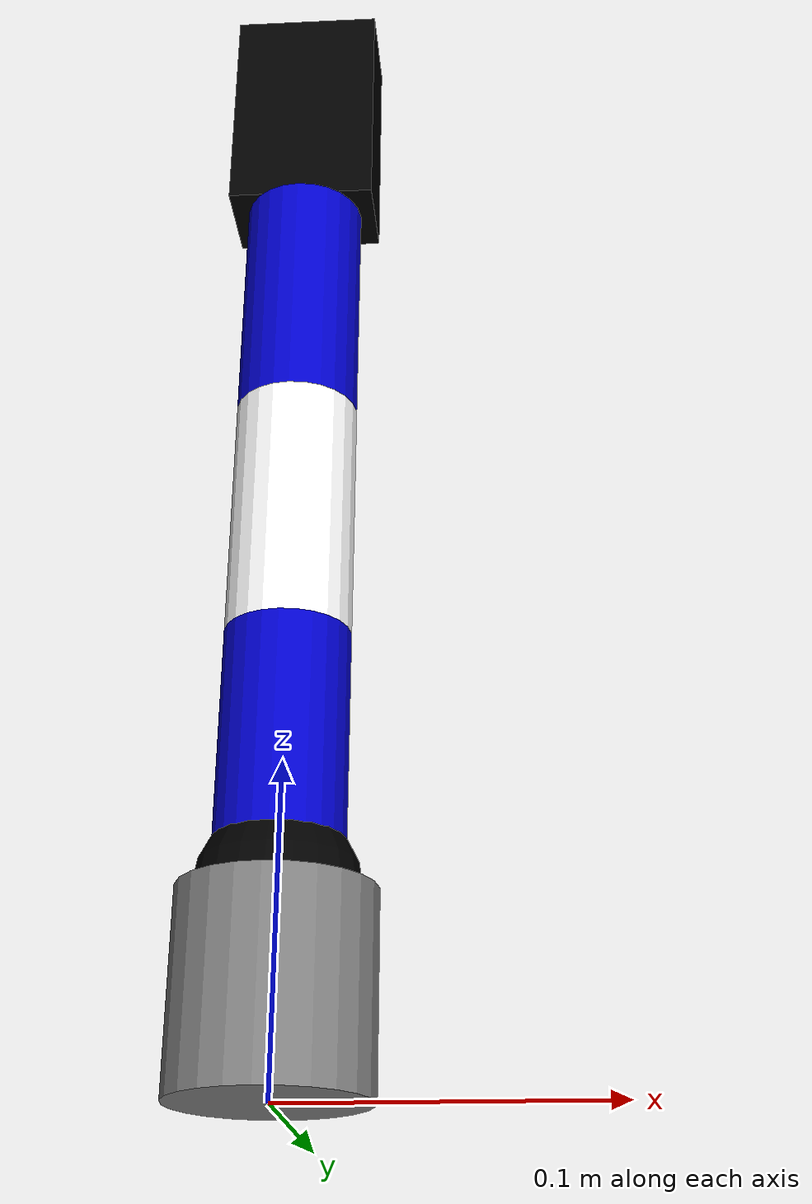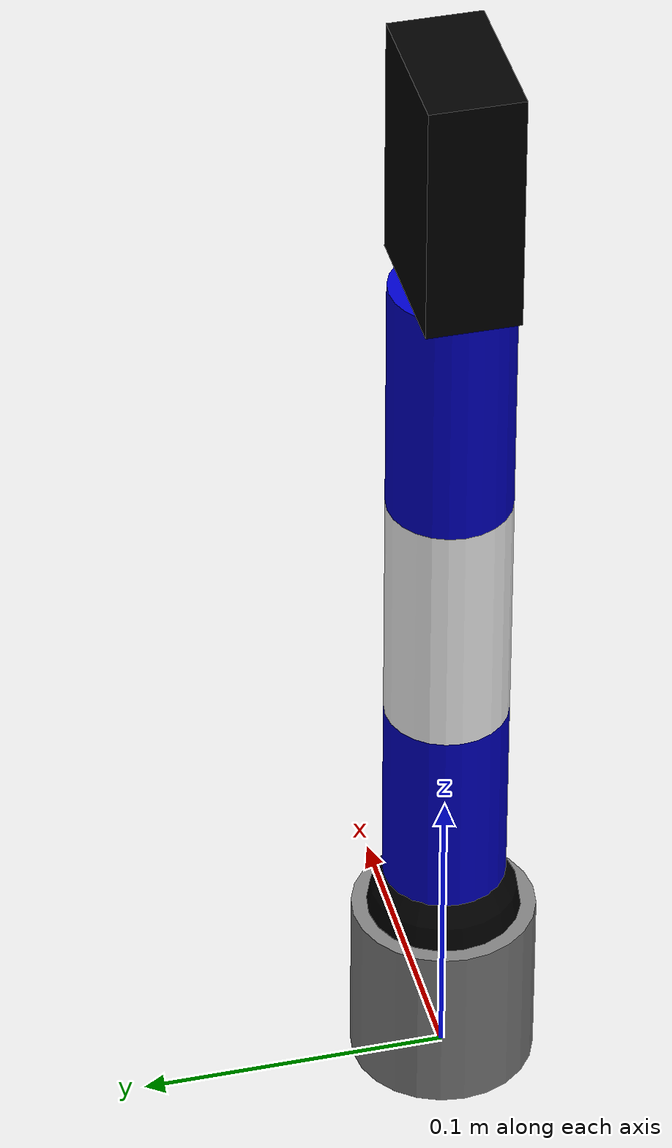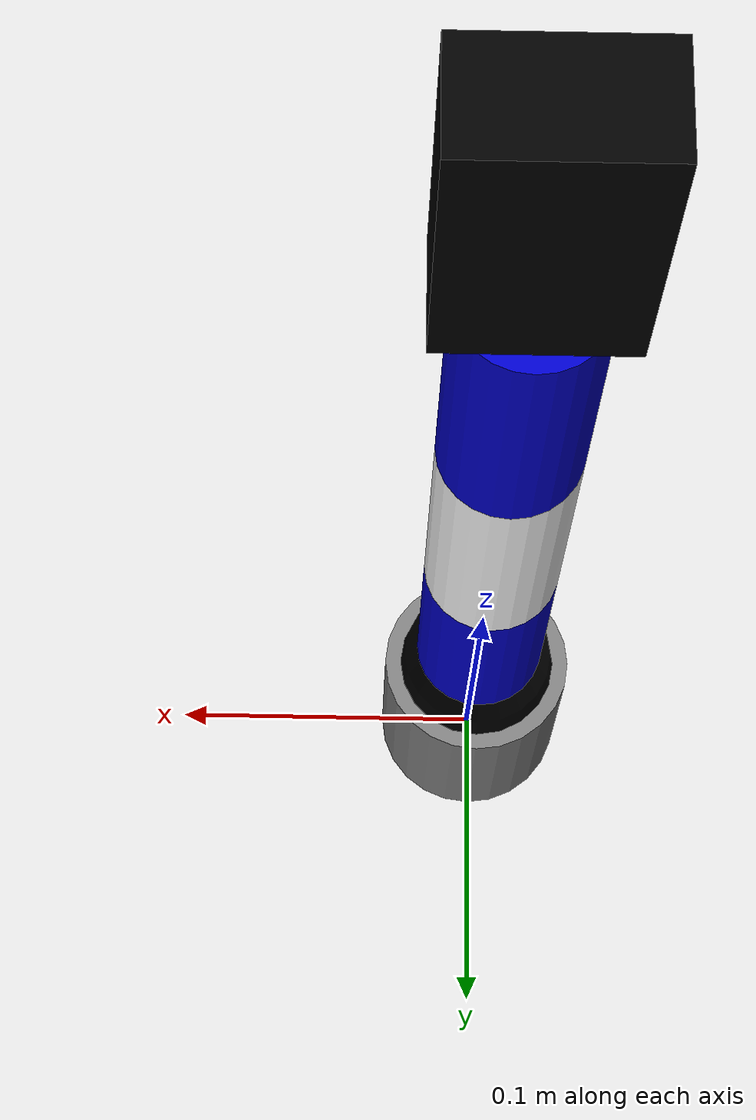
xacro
<?xml version="1.0"?>
<robot xmlns:xacro="http://www.ros.org/wiki/xacro" name="fashion_arm">

    <xacro:property name="L_LINK" value="0.0814"/>    <xacro:property name="L_END" value="0.140"/>      <xacro:property name="H_BASE" value="0.06"/>      <xacro:property name="RADIUS" value="0.02"/>

    <material name="blue"><color rgba="0 0 0.8 1"/></material>
    <material name="white"><color rgba="1 1 1 1"/></material>
    <material name="black"><color rgba="0 0 0 1"/></material>
    <material name="grey"><color rgba="0.5 0.5 0.5 1"/></material>

    <xacro:macro name="arm_link" params="link_name length color">
        <link name="${link_name}">
            <visual>
                <origin xyz="0 0 ${length/2}" rpy="0 0 0"/>
                <geometry>
                    <cylinder length="${length}" radius="${RADIUS}"/>
                </geometry>
                <material name="${color}"/>
            </visual>
            <collision>
                <origin xyz="0 0 ${length/2}" rpy="0 0 0"/>
                <geometry>
                    <cylinder length="${length}" radius="${RADIUS}"/>
                </geometry>
            </collision>
        </link>
    </xacro:macro>

    <xacro:macro name="arm_joint" params="joint_name parent child origin_xyz axis_xyz upper lower">
        <joint name="${joint_name}" type="revolute">
            <parent link="${parent}"/>
            <child link="${child}"/>
            <origin xyz="${origin_xyz}" rpy="0 0 0"/> <axis xyz="${axis_xyz}"/>
            <limit effort="100" velocity="2.0" upper="${upper}" lower="${lower}"/>
        </joint>
    </xacro:macro>

    <link name="base_link">
        <visual>
            <origin xyz="0 0 ${H_BASE/2}" rpy="0 0 0"/>
            <geometry><cylinder length="${H_BASE}" radius="0.03"/></geometry>
            <material name="grey"/>
        </visual>
    </link>

    <link name="link_1">
        <visual>
            <origin xyz="0 0 0" rpy="0 0 0"/>
            <geometry><sphere radius="0.025"/></geometry>
            <material name="black"/>
        </visual>
    </link>

    <xacro:arm_joint joint_name="joint_1"
                    parent="base_link" child="link_1"
                    origin_xyz="0 0 ${H_BASE}"
                    axis_xyz="0 0 -1"
                    upper="${pi}" lower="${-pi}"/>

    <xacro:arm_link link_name="link_2" length="${L_LINK}" color="blue"/>

    <xacro:arm_joint joint_name="joint_2"
                    parent="link_1" child="link_2"
                    origin_xyz="0 0 0"
                    axis_xyz="1 0 0"
                    upper="${pi}" lower="${-pi}"/>

    <xacro:arm_link link_name="link_3" length="${L_LINK}" color="white"/>

    <xacro:arm_joint joint_name="joint_3"
                    parent="link_2" child="link_3"
                    origin_xyz="0 0 ${L_LINK}"
                    axis_xyz="-1 0 0"
                    upper="${pi}" lower="${-pi}"/>

    <xacro:arm_link link_name="link_4" length="${L_LINK}" color="blue"/>

    <xacro:arm_joint joint_name="joint_4"
                    parent="link_3" child="link_4"
                    origin_xyz="0 0 ${L_LINK}"
                    axis_xyz="-1 0 0"
                    upper="${pi}" lower="${-pi}"/>

    <link name="link_5">
        <visual>
            <geometry><box size="0.05 0.03 0.08"/></geometry>
            <origin xyz="0 0 0.04"/> <material name="black"/>
        </visual>
    </link>

    <joint name="joint_5" type="prismatic">
        <parent link="link_4"/>
        <child link="link_5"/>
        <origin xyz="0 0 ${L_LINK}" rpy="0 0 0"/>
        <axis xyz="0 1 0"/>
        <limit effort="100" velocity="1.0" upper="0.05" lower="0.0"/>
    </joint>

    <link name="end_effector"/>
    <joint name="ee_fixed_joint" type="fixed">
        <parent link="link_4"/>
        <child link="end_effector"/>
        <origin xyz="0 0 ${L_END}" rpy="0 0 0"/>
    </joint>

    <ros2_control name="ArmSystem" type="system">
      <hardware>
        <plugin>arm_driver/UartServoHardwareInterface</plugin>
        <param name="serial_port">/dev/serial0</param>
        <param name="servo_ids">1,2,3,4,5</param>
      </hardware>
      <joint name="joint_1"><command_interface name="position"/><state_interface name="position"/><state_interface name="velocity"/></joint>
      <joint name="joint_2"><command_interface name="position"/><state_interface name="position"/><state_interface name="velocity"/></joint>
      <joint name="joint_3"><command_interface name="position"/><state_interface name="position"/><state_interface name="velocity"/></joint>
      <joint name="joint_4"><command_interface name="position"/><state_interface name="position"/><state_interface name="velocity"/></joint>
      <joint name="joint_5"><command_interface name="position"/><state_interface name="position"/><state_interface name="velocity"/></joint>
    </ros2_control>

</robot>
